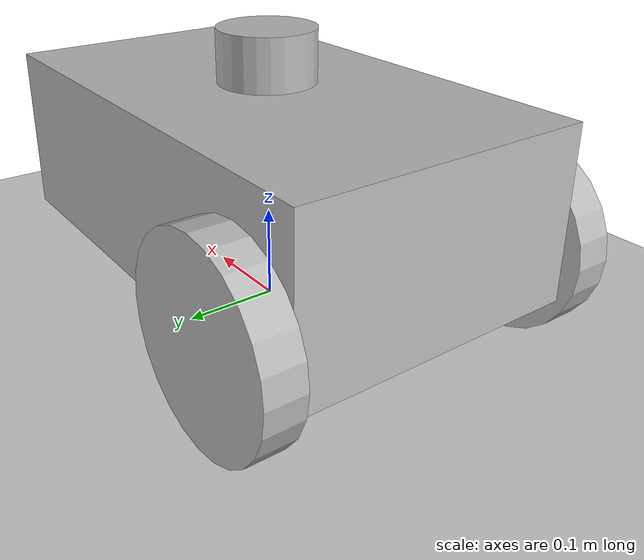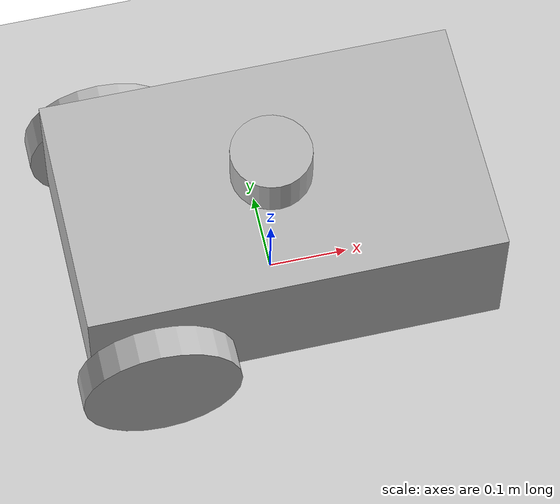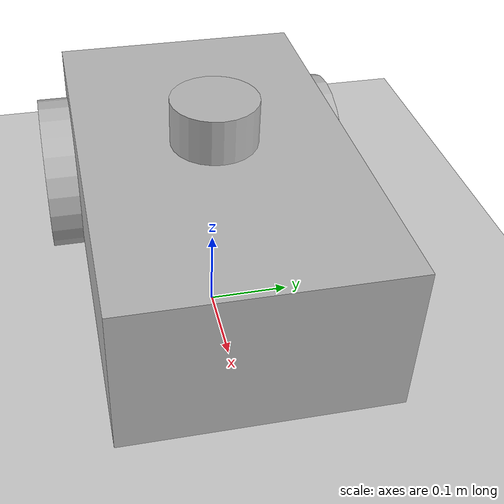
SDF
<?xml version="1.0" ?>
<sdf version="1.5">
  <world name="default">
      <scene>
        <origin_visual>0</origin_visual>
        <grid>0</grid>
    </scene>
    <physics type="ode">
      <max_step_size>0.003</max_step_size>
      <real_time_update_rate>333</real_time_update_rate>
      <ode>
        <constraints>
          <!-- In Robogen: Simulator.cpp -->
          <erp>0.1</erp>
          <cfm>10e-6</cfm>

          <!-- Making this smaller seems to decrease rather than increase stability. -->
          <contact_max_correcting_vel>100</contact_max_correcting_vel>
          <contact_surface_layer>1e-8</contact_surface_layer>
        </constraints>
        <solver>
          <type>quick</type>
        </solver>
      </ode>
    </physics>

    <!-- A global light source -->
    <include>
      <uri>model://sun</uri>
    </include>
    <include>
      <uri>model://tol_ground</uri>
    </include>
    <include>
      <uri>model://test_bot</uri>
    </include>
    <include>
      <uri>model://box</uri>
    </include>
    <gui fullscreen='0'>
      <camera name='user_camera'>
        <pose frame=''>0.407182 -0.446632 1.00088 0 1.06364 2.56819</pose>
        <view_controller>orbit</view_controller>
        <projection_type>perspective</projection_type>
      </camera>
    </gui>

    <plugin name="tol-control" filename="libtolworldcontrol.so" />
  </world>
</sdf>

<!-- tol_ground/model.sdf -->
<sdf version="1.5">
<!-- Custom ground plane -->
  <model name="tol_ground">
    <static>true</static>
    <link name="link">
      <collision name="collision">
        <geometry>
          <plane>
            <normal>0 0 1</normal>
            <size>100 100</size>
          </plane>
        </geometry>
        <surface>
          <friction>
            <ode>
              <!-- RobogenCollision.cpp -->
              <mu>1</mu>
              <mu2>1</mu2>
              <slip1>0.01</slip1>
              <slip2>0.01</slip2>
            </ode>
          </friction>
          <contact>
            <ode>
              <kd>9.000000e+04</kd>
              <kp>2.000000e+06</kp>
            </ode>
          </contact>
        </surface>
      </collision>
      <visual name="visual">
        <cast_shadows>false</cast_shadows>
        <geometry>
          <plane>
            <normal>0 0 1</normal>
            <size>100 100</size>
          </plane>
        </geometry>
        <material>
          <script>
            <uri>model://tol_ground/materials/scripts</uri>
            <uri>model://tol_ground/materials/textures</uri>
            <name>Floor/Concrete1</name>
          </script>
        </material>
      </visual>
    </link>
  </model>
<!-- END Custom ground plane -->
</sdf>

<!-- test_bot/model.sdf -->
<sdf version='1.7'>
  <model name='test_bot'>
    <link name='base_footprint'>
      <inertial>
        <pose>0.049827 0 0.127301 0 -0 0</pose>
        <mass>7.225</mass>
        <inertia>
          <ixx>0.144501</ixx>
          <ixy>0</ixy>
          <ixz>0.0242284</ixz>
          <iyy>0.217905</iyy>
          <iyz>0</iyz>
          <izz>0.104451</izz>
        </inertia>
      </inertial>
      <collision name='base_footprint_fixed_joint_lump__base_link_collision'>
        <pose>0 0 0.15 0 -0 0</pose>
        <geometry>
          <box>
            <size>0.52 0.31 0.18</size>
          </box>
        </geometry>
      </collision>
      <collision name='base_footprint_fixed_joint_lump__front_caster_collision_1'>
        <pose>0.18 0 0.06 0 -0 0</pose>
        <geometry>
          <sphere>
            <radius>0.06</radius>
          </sphere>
        </geometry>
        <surface>
          <contact>
            <ode/>
          </contact>
          <friction>
            <ode>
              <mu>0</mu>
              <mu2>0</mu2>
            </ode>
          </friction>
        </surface>
      </collision>
      <collision name='base_footprint_fixed_joint_lump__imu_link_collision_2'>
        <pose>0 0 0.16 0 -0 0</pose>
        <geometry>
          <box>
            <size>0.1 0.1 0.1</size>
          </box>
        </geometry>
        <surface>
          <contact>
            <ode/>
          </contact>
          <friction>
            <ode/>
          </friction>
        </surface>
      </collision>
      <collision name='base_footprint_fixed_joint_lump__lidar_link_collision_3'>
        <pose>0 0 0.27 0 -0 0</pose>
        <geometry>
          <cylinder>
            <length>0.055</length>
            <radius>0.0508</radius>
          </cylinder>
        </geometry>
        <surface>
          <contact>
            <ode/>
          </contact>
          <friction>
            <ode/>
          </friction>
        </surface>
      </collision>
      <visual name='base_footprint_fixed_joint_lump__base_link_visual'>
        <pose>0 0 0.15 0 -0 0</pose>
        <geometry>
          <box>
            <size>0.52 0.31 0.18</size>
          </box>
        </geometry>
      </visual>
      <visual name='base_footprint_fixed_joint_lump__front_caster_visual_1'>
        <pose>0.18 0 0.06 0 -0 0</pose>
        <geometry>
          <sphere>
            <radius>0.06</radius>
          </sphere>
        </geometry>
      </visual>
      <visual name='base_footprint_fixed_joint_lump__imu_link_visual_2'>
        <pose>0 0 0.16 0 -0 0</pose>
        <geometry>
          <box>
            <size>0.1 0.1 0.1</size>
          </box>
        </geometry>
      </visual>
      <visual name='base_footprint_fixed_joint_lump__lidar_link_visual_3'>
        <pose>0 0 0.27 0 -0 0</pose>
        <geometry>
          <cylinder>
            <length>0.055</length>
            <radius>0.0508</radius>
          </cylinder>
        </geometry>
      </visual>
      <sensor name='imu_sensor' type='imu'>
        <plugin name='imu_plugin' filename='libgazebo_ros_imu_sensor.so'>
          <ros>
            <remapping>~/out:=imu</remapping>
          </ros>
          <initial_orientation_as_reference>0</initial_orientation_as_reference>
        </plugin>
        <always_on>1</always_on>
        <update_rate>100</update_rate>
        <visualize>1</visualize>
        <imu>
          <angular_velocity>
            <x>
              <noise type='gaussian'>
                <mean>0</mean>
                <stddev>0.0002</stddev>
                <bias_mean>7.5e-06</bias_mean>
                <bias_stddev>8e-07</bias_stddev>
              </noise>
            </x>
            <y>
              <noise type='gaussian'>
                <mean>0</mean>
                <stddev>0.0002</stddev>
                <bias_mean>7.5e-06</bias_mean>
                <bias_stddev>8e-07</bias_stddev>
              </noise>
            </y>
            <z>
              <noise type='gaussian'>
                <mean>0</mean>
                <stddev>0.0002</stddev>
                <bias_mean>7.5e-06</bias_mean>
                <bias_stddev>8e-07</bias_stddev>
              </noise>
            </z>
          </angular_velocity>
          <linear_acceleration>
            <x>
              <noise type='gaussian'>
                <mean>0</mean>
                <stddev>0.017</stddev>
                <bias_mean>0.1</bias_mean>
                <bias_stddev>0.001</bias_stddev>
              </noise>
            </x>
            <y>
              <noise type='gaussian'>
                <mean>0</mean>
                <stddev>0.017</stddev>
                <bias_mean>0.1</bias_mean>
                <bias_stddev>0.001</bias_stddev>
              </noise>
            </y>
            <z>
              <noise type='gaussian'>
                <mean>0</mean>
                <stddev>0.017</stddev>
                <bias_mean>0.1</bias_mean>
                <bias_stddev>0.001</bias_stddev>
              </noise>
            </z>
          </linear_acceleration>
        </imu>
        <pose>0 0 0.16 0 -0 0</pose>
      </sensor>
      <sensor name='lidar' type='ray'>
        <always_on>1</always_on>
        <visualize>1</visualize>
        <update_rate>5</update_rate>
        <ray>
          <scan>
            <horizontal>
              <samples>360</samples>
              <resolution>1</resolution>
              <min_angle>0</min_angle>
              <max_angle>6.28</max_angle>
            </horizontal>
          </scan>
          <range>
            <min>0.12</min>
            <max>6</max>
            <resolution>0.015</resolution>
          </range>
          <noise>
            <type>gaussian</type>
            <mean>0</mean>
            <stddev>0.01</stddev>
          </noise>
        </ray>
        <plugin name='scan' filename='libgazebo_ros_ray_sensor.so'>
          <ros>
            <remapping>~/out:=scan</remapping>
          </ros>
          <output_type>sensor_msgs/LaserScan</output_type>
          <frame_name>lidar_link</frame_name>
        </plugin>
        <pose>0 0 0.27 0 -0 0</pose>
      </sensor>
    </link>
    <joint name='drivewhl_l_joint' type='revolute'>
      <pose relative_to='base_footprint'>-0.18 0.175 0.1 0 -0 0</pose>
      <parent>base_footprint</parent>
      <child>drivewhl_l_link</child>
      <axis>
        <xyz>0 1 0</xyz>
        <limit>
          <lower>-1e+16</lower>
          <upper>1e+16</upper>
        </limit>
        <dynamics>
          <spring_reference>0</spring_reference>
          <spring_stiffness>0</spring_stiffness>
        </dynamics>
      </axis>
    </joint>
    <link name='drivewhl_l_link'>
      <pose relative_to='drivewhl_l_joint'>0 0 0 0 -0 0</pose>
      <inertial>
        <pose>0 0 0 1.5708 -0 0</pose>
        <mass>2</mass>
        <inertia>
          <ixx>0.00526667</ixx>
          <ixy>0</ixy>
          <ixz>0</ixz>
          <iyy>0.00526667</iyy>
          <iyz>0</iyz>
          <izz>0.01</izz>
        </inertia>
      </inertial>
      <collision name='drivewhl_l_link_collision'>
        <pose>0 0 0 1.5708 -0 0</pose>
        <geometry>
          <cylinder>
            <length>0.04</length>
            <radius>0.1</radius>
          </cylinder>
        </geometry>
      </collision>
      <visual name='drivewhl_l_link_visual'>
        <pose>0 0 0 1.5708 -0 0</pose>
        <geometry>
          <cylinder>
            <length>0.04</length>
            <radius>0.1</radius>
          </cylinder>
        </geometry>
      </visual>
    </link>
    <joint name='drivewhl_r_joint' type='revolute'>
      <pose relative_to='base_footprint'>-0.18 -0.175 0.1 0 -0 0</pose>
      <parent>base_footprint</parent>
      <child>drivewhl_r_link</child>
      <axis>
        <xyz>0 1 0</xyz>
        <limit>
          <lower>-1e+16</lower>
          <upper>1e+16</upper>
        </limit>
        <dynamics>
          <spring_reference>0</spring_reference>
          <spring_stiffness>0</spring_stiffness>
        </dynamics>
      </axis>
    </joint>
    <link name='drivewhl_r_link'>
      <pose relative_to='drivewhl_r_joint'>0 0 0 0 -0 0</pose>
      <inertial>
        <pose>0 0 0 1.5708 -0 0</pose>
        <mass>2</mass>
        <inertia>
          <ixx>0.00526667</ixx>
          <ixy>0</ixy>
          <ixz>0</ixz>
          <iyy>0.00526667</iyy>
          <iyz>0</iyz>
          <izz>0.01</izz>
        </inertia>
      </inertial>
      <collision name='drivewhl_r_link_collision'>
        <pose>0 0 0 1.5708 -0 0</pose>
        <geometry>
          <cylinder>
            <length>0.04</length>
            <radius>0.1</radius>
          </cylinder>
        </geometry>
      </collision>
      <visual name='drivewhl_r_link_visual'>
        <pose>0 0 0 1.5708 -0 0</pose>
        <geometry>
          <cylinder>
            <length>0.04</length>
            <radius>0.1</radius>
          </cylinder>
        </geometry>
      </visual>
    </link>
    <static>0</static>
    <plugin name='diff_drive' filename='libgazebo_ros_diff_drive.so'>
      <update_rate>30</update_rate>
      <left_joint>drivewhl_l_joint</left_joint>
      <right_joint>drivewhl_r_joint</right_joint>
      <wheel_separation>0.35</wheel_separation>
      <wheel_diameter>0.2</wheel_diameter>
      <max_wheel_torque>20</max_wheel_torque>
      <max_wheel_acceleration>1.0</max_wheel_acceleration>
      <command_topic>cmd_vel</command_topic>
      <publish_odom>1</publish_odom>
      <publish_odom_tf>0</publish_odom_tf>
      <publish_wheel_tf>1</publish_wheel_tf>
      <odometry_frame>odom</odometry_frame>
      <robot_base_frame>base_footprint</robot_base_frame>
    </plugin>
  </model>
</sdf>

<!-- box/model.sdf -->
<sdf version="1.5">
<model name="box">
  <pose>0 0.0 0.025 0 0 0</pose>
  <static>false</static>
    <link name="link">
        <gravity>0</gravity>
      <visual name="visual">
        <geometry>
          <box>
            <size>0.1 0.1 0.1</size>
          </box>
        </geometry>
        <material>
          <emissive>0.3 0.5 0.3 1</emissive>
        </material>
      </visual>
    </link>
  </model>
</sdf>
